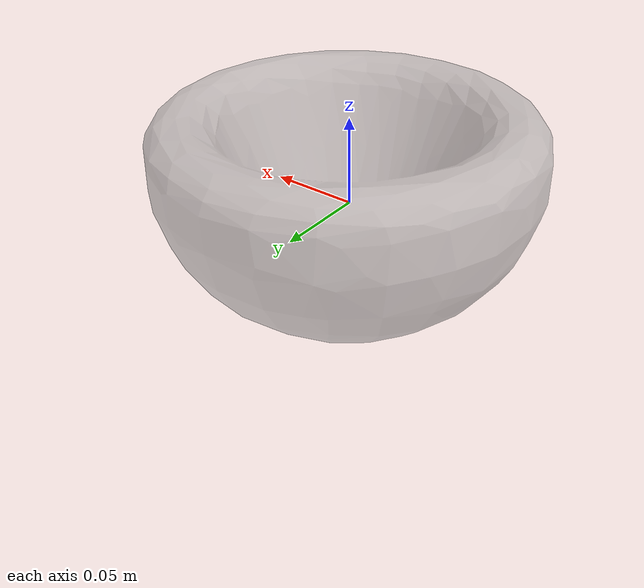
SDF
<?xml version='1.0'?>
<sdf version='1.4'>
  <model name="object">
    <link name='link'>
      <pose>0.0 0 0 0 0 0</pose>
      <inertial>
        <mass>1.966928</mass>
        <inertia>
          <ixx>0.00735961</ixx>
          <ixy>0</ixy>
          <ixz>0</ixz>
          <iyy>0.00735627</iyy>
          <iyz>0</iyz>
          <izz>0.01175892</izz>
        </inertia>
      </inertial>
      <collision name='c_bp_025'>
        <geometry>
          <mesh>
            <scale>1 1 1</scale>
            <uri>model://bowl_poisson_025/mesh/bowl_poisson_025.dae</uri>
          </mesh>
        </geometry>
        <surface>
          <contact>
            <ode>
              <kp>1000000</kp>
              <kd>100</kd>
              <max_vel>1000.0</max_vel>
              <min_depth>0.0</min_depth>
            </ode>
          </contact>
        </surface>
      </collision>

      <visual name='v_bp_025'>
        <geometry>
          <mesh>
            <scale>1 1 1</scale>
            <uri>model://bowl_poisson_025/mesh/bowl_poisson_025.dae</uri>
          </mesh>
        </geometry>
        <material>
          <script>
            <name>Gazebo/GreyTransparent</name>
            <uri>file://media/materials/scripts/gazebo.material</uri>
          </script>
        </material>
      </visual>

      <velocity_decay>
        <linear>0.0004</linear>
        <angular>0.0004</angular>
      </velocity_decay>
    </link>
  </model>
</sdf>
